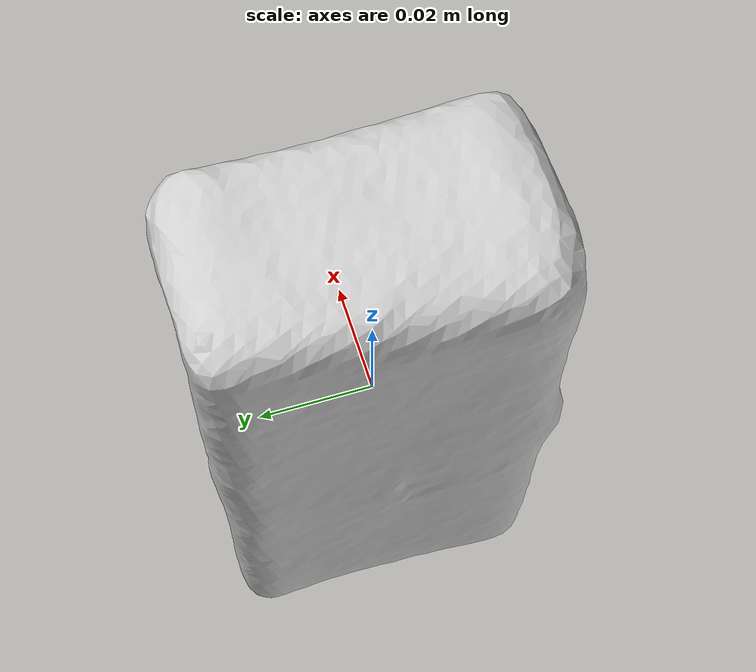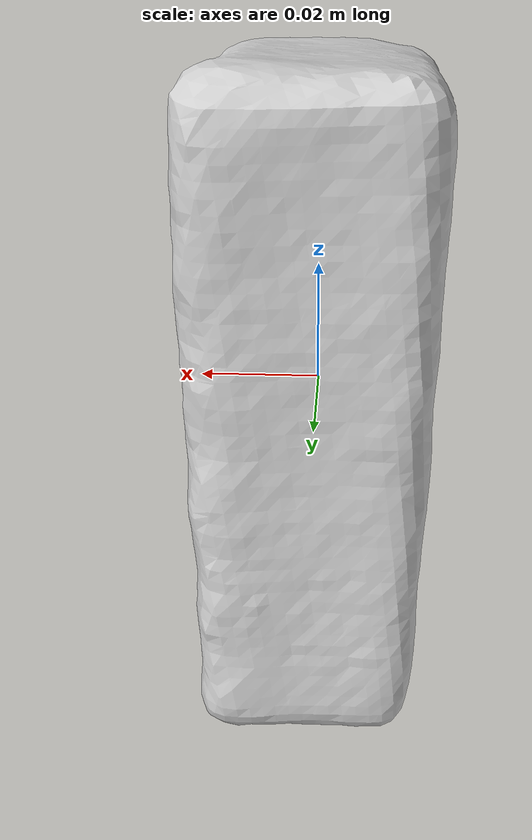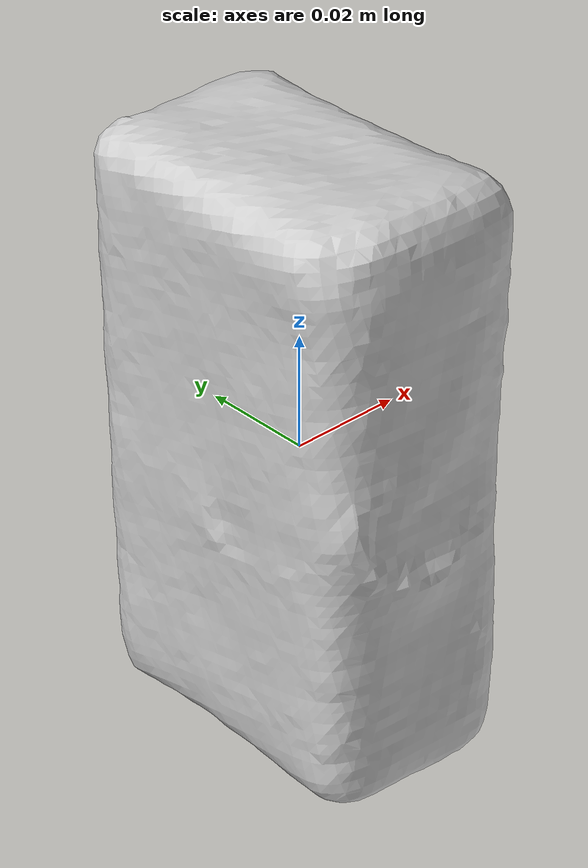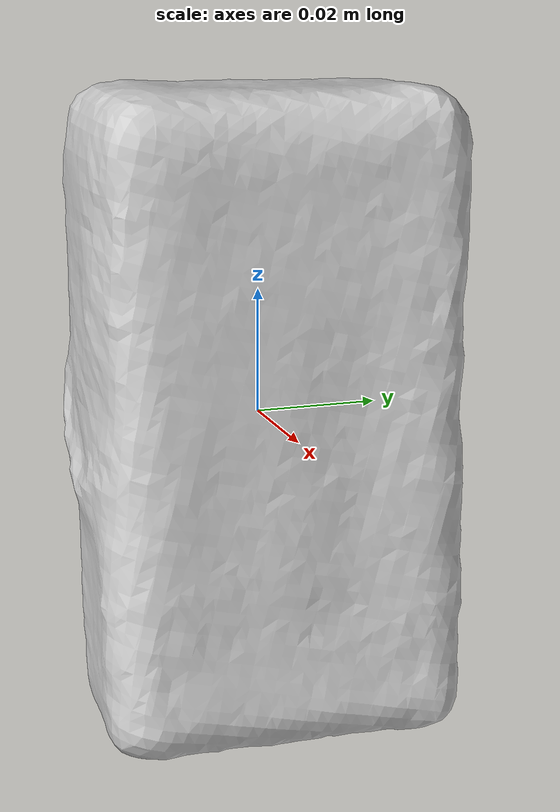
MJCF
<mujoco>
    <asset>
        <mesh name="C_box" file="Collision/box.stl"/>
        <mesh name="V_box" file="Visual/box.stl"/>
        <material name="object" specular="0.75" shininess="0.1" reflectance="0.3" rgba="0.8 0.8 0.8 1.0"/>
        <material name="object_ref" specular="0.75" shininess="0.1" reflectance="0.3" rgba="0.8 0.8 0.8 1.0"/>
    </asset>
    <worldbody>
        <body name="box" pos="0 0 0" quat="1 0 0 0">
            <geom name = "C_box" condim="3" density="125" friction="1 0.5 0.1" group="4" conaffinity="1" contype="1"
                  size="0.0165 0.0265 0.049" solref="-6000 -300" solimp="1.0 0.95 0.001 0.5 2" type="box" material="object"/>
            <geom name = "V_box" density="0" conaffinity="0" contype="0" group="1" mesh="V_box" type="mesh" material="object"/>
            <joint armature="0.001" damping="0" frictionloss="0.001" limited="false" type="free" />
        </body>
    </worldbody>
</mujoco>
